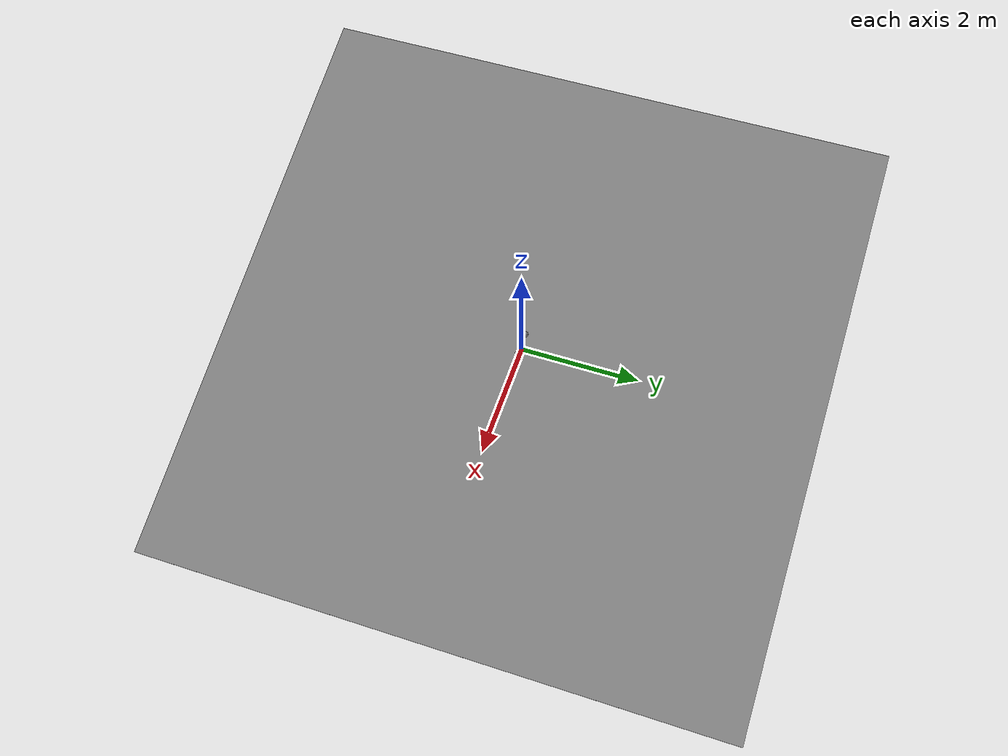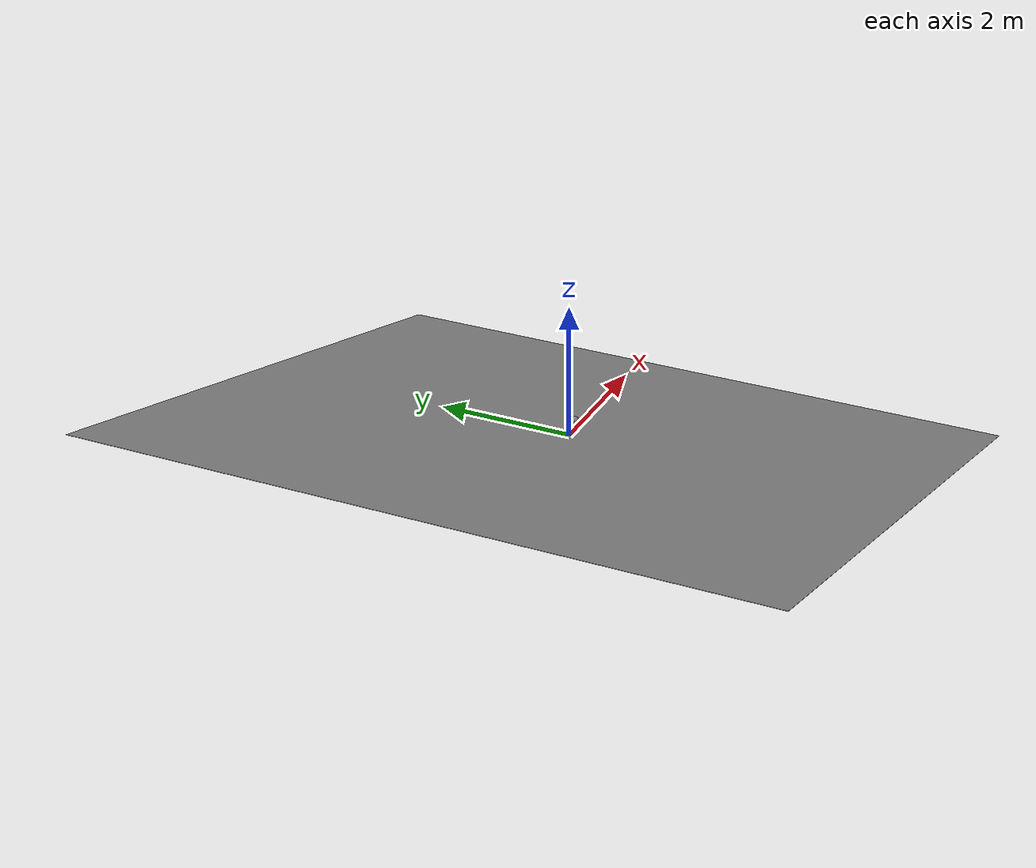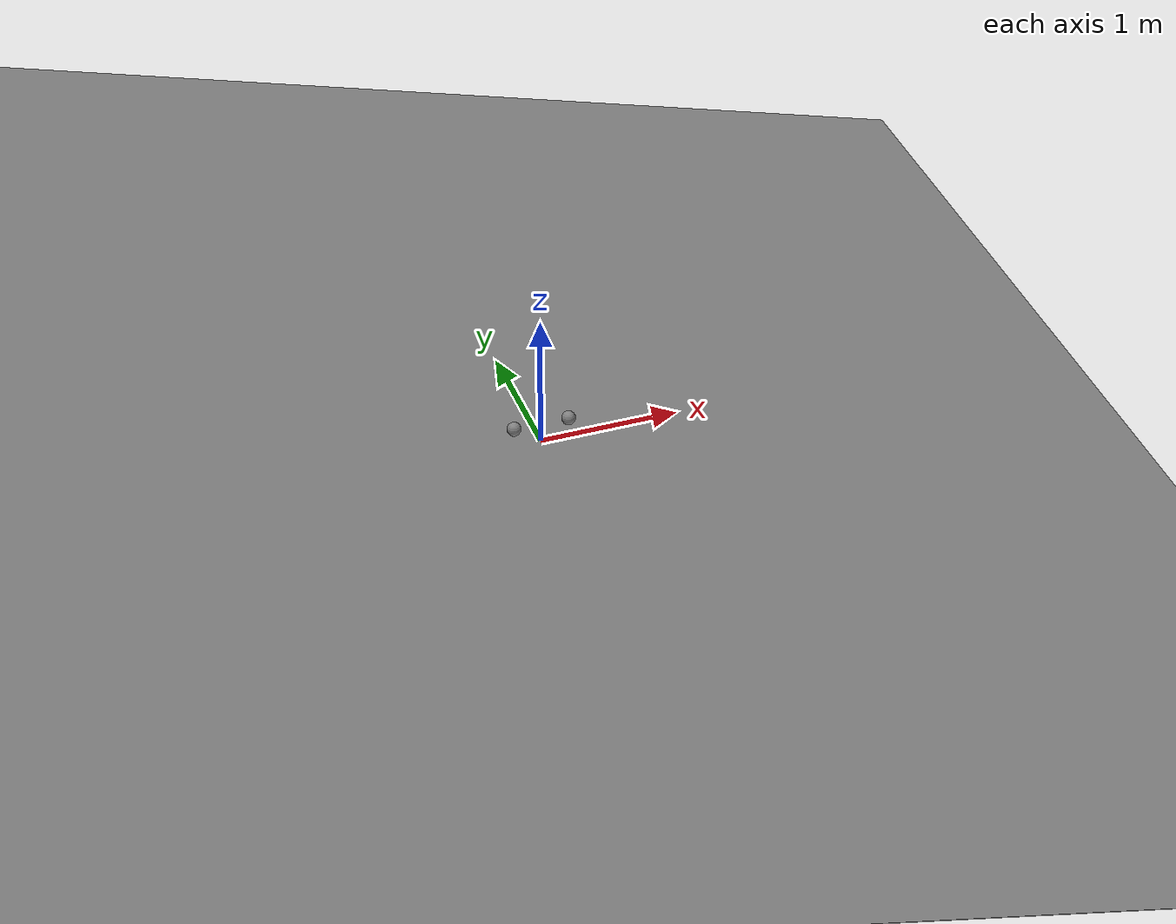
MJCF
<mujoco model="condim-test">
          <compiler angle="radian"/>
          <option gravity="0 0 -9.81" timestep="0.001" solver="Newton"
                  iterations="50" tolerance="1e-10"/>

          <worldbody>
            <body name="ramp" euler="0 0.2618 0">
              <geom name="floor" type="plane" size="5 5 0.01"
                    friction="0 0 0"/>
            </body>

            <body name="frictionless" pos="-0.2 0 0.15">
              <freejoint/>
              <geom name="g_fric" type="sphere" size="0.05" mass="0.5"
                    friction="1 0.005 0.001"/>
            </body>
            <body name="sliding" pos="0.2 0 0.15">
              <freejoint/>
              <geom name="g_slide" type="sphere" size="0.05" mass="0.5"
                    friction="1 0.005 0.001"/>
            </body>
          </worldbody>

          <contact>
            <pair geom1="floor" geom2="g_fric" condim="1"
                  friction="0 0 0 0 0"/>
            <pair geom1="floor" geom2="g_slide" condim="3"
                  friction="1 1 0.005 0.001 0.001"/>
          </contact>
        </mujoco>
